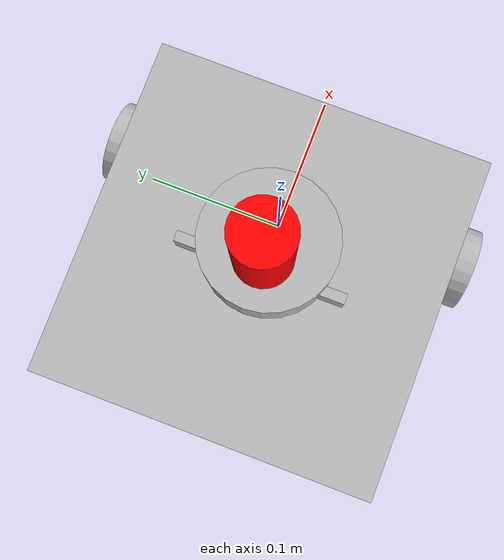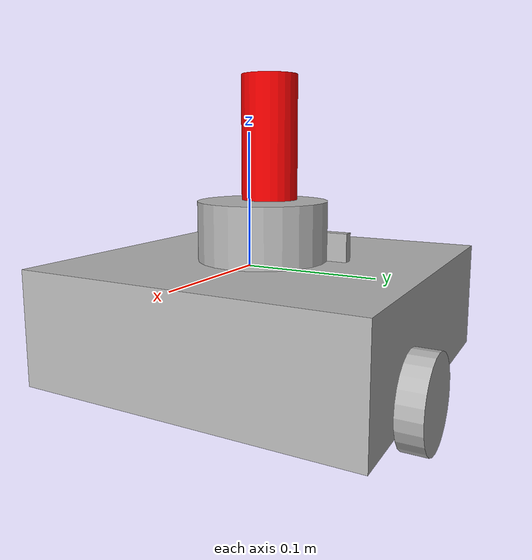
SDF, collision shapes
<?xml version='1.0'?>
<sdf version='1.6'>
  <model name='Untitled'>
    <link name='link_2'>
      <pose frame=''>-0.032357 -0.000429 0.090604 0 -0 0</pose>
      <inertial>
        <mass>0.00020921</mass>
        <inertia>
          <ixx>2.3e-07</ixx>
          <ixy>0</ixy>
          <ixz>0</ixz>
          <iyy>2.3e-07</iyy>
          <iyz>0</iyz>
          <izz>5e-08</izz>
        </inertia>
        <pose frame=''>0 0 0 0 -0 0</pose>
      </inertial>
      <gravity>1</gravity>
      <self_collide>0</self_collide>
      <kinematic>0</kinematic>
      <visual name='visual'>
        <pose frame=''>0 0 0 0 -0 0</pose>
        <geometry>
          <cylinder>
            <radius>0.0220156</radius>
            <length>0.107673</length>
          </cylinder>
        </geometry>
        <material>
          <lighting>1</lighting>
          <script>
            <uri>file://media/materials/scripts/gazebo.material</uri>
            <name>Gazebo/Grey</name>
          </script>
          <shader type='pixel'>
            <normal_map>__default__</normal_map>
          </shader>
          <ambient>1 0 0 1</ambient>
          <diffuse>1 0 0 1</diffuse>
          <specular>1 0 0 1</specular>
          <emissive>1 0 0 1</emissive>
        </material>
        <transparency>0</transparency>
        <cast_shadows>1</cast_shadows>
      </visual>
      <collision name='collision'>
        <laser_retro>0</laser_retro>
        <max_contacts>10</max_contacts>
        <pose frame=''>0 0 0 0 -0 0</pose>
        <geometry>
          <cylinder>
            <radius>0.022016</radius>
            <length>0.107673</length>
          </cylinder>
        </geometry>
        <surface>
          <friction>
            <ode>
              <mu>1</mu>
              <mu2>1</mu2>
              <fdir1>0 0 0</fdir1>
              <slip1>0</slip1>
              <slip2>0</slip2>
            </ode>
            <torsional>
              <coefficient>1</coefficient>
              <patch_radius>0</patch_radius>
              <surface_radius>0</surface_radius>
              <use_patch_radius>1</use_patch_radius>
              <ode>
                <slip>0</slip>
              </ode>
            </torsional>
          </friction>
          <bounce>
            <restitution_coefficient>0</restitution_coefficient>
            <threshold>1e+06</threshold>
          </bounce>
          <contact>
            <collide_without_contact>0</collide_without_contact>
            <collide_without_contact_bitmask>1</collide_without_contact_bitmask>
            <collide_bitmask>1</collide_bitmask>
            <ode>
              <soft_cfm>0</soft_cfm>
              <soft_erp>0.2</soft_erp>
              <kp>1e+13</kp>
              <kd>1</kd>
              <max_vel>0.01</max_vel>
              <min_depth>0</min_depth>
            </ode>
            <bullet>
              <split_impulse>1</split_impulse>
              <split_impulse_penetration_threshold>-0.01</split_impulse_penetration_threshold>
              <soft_cfm>0</soft_cfm>
              <soft_erp>0.2</soft_erp>
              <kp>1e+13</kp>
              <kd>1</kd>
            </bullet>
          </contact>
        </surface>
      </collision>
    </link>
    <model name='turtlebot3_waffle'>
      <link name='base'>
        <inertial>
          <pose frame=''>-0.064 0 0.048 0 -0 0</pose>
          <inertia>
            <ixx>0.001</ixx>
            <ixy>0</ixy>
            <ixz>0</ixz>
            <iyy>0.001</iyy>
            <iyz>0</iyz>
            <izz>0.001</izz>
          </inertia>
          <mass>1</mass>
        </inertial>
        <collision name='base_collision'>
          <pose frame=''>-0.064 0 0.048 0 -0 0</pose>
          <geometry>
            <box>
              <size>0.265 0.265 0.089</size>
            </box>
          </geometry>
        </collision>
        <visual name='base_visual'>
          <pose frame=''>-0.064 0 0 0 -0 0</pose>
          <geometry>
            <mesh>
              <uri>model://turtlebot3_waffle/meshes/waffle_base.dae</uri>
              <scale>0.001 0.001 0.001</scale>
            </mesh>
          </geometry>
        </visual>
        <collision name='right_caster_collision'>
          <pose frame=''>-0.177 -0.064 -0.004 0 -0 0</pose>
          <geometry>
            <sphere>
              <radius>0.005</radius>
            </sphere>
          </geometry>
          <surface>
            <friction>
              <ode>
                <mu>100000</mu>
                <mu2>100000</mu2>
                <fdir1>0 0 0</fdir1>
                <slip1>0</slip1>
                <slip2>0</slip2>
              </ode>
            </friction>
          </surface>
        </collision>
        <collision name='left_caster_collision'>
          <pose frame=''>-0.177 0.064 -0.004 0 -0 0</pose>
          <geometry>
            <sphere>
              <radius>0.005</radius>
            </sphere>
          </geometry>
          <surface>
            <friction>
              <ode>
                <mu>100000</mu>
                <mu2>100000</mu2>
                <fdir1>0 0 0</fdir1>
                <slip1>0</slip1>
                <slip2>0</slip2>
              </ode>
            </friction>
          </surface>
        </collision>
      </link>
      <link name='lidar'>
        <inertial>
          <pose frame=''>-0.052 0 0.111 0 -0 0</pose>
          <inertia>
            <ixx>0.001</ixx>
            <ixy>0</ixy>
            <ixz>0</ixz>
            <iyy>0.001</iyy>
            <iyz>0</iyz>
            <izz>0.001</izz>
          </inertia>
          <mass>0.125</mass>
        </inertial>
        <collision name='lidar_sensor_collision'>
          <pose frame=''>-0.052 0 0.111 0 -0 0</pose>
          <geometry>
            <cylinder>
              <radius>0.0508</radius>
              <length>0.055</length>
            </cylinder>
          </geometry>
        </collision>
        <visual name='lidar_sensor_visual'>
          <pose frame=''>-0.064 0 0.121 0 -0 0</pose>
          <geometry>
            <mesh>
              <uri>model://turtlebot3_waffle/meshes/lds.dae</uri>
              <scale>0.001 0.001 0.001</scale>
            </mesh>
          </geometry>
        </visual>
        <sensor name='hls_lfcd_lds' type='ray'>
          <always_on>1</always_on>
          <visualize>0</visualize>
          <pose frame=''>-0.064 0 0.121 0 -0 0</pose>
          <update_rate>1800</update_rate>
          <ray>
            <scan>
              <horizontal>
                <samples>360</samples>
                <resolution>1</resolution>
                <min_angle>0</min_angle>
                <max_angle>6.28</max_angle>
              </horizontal>
            </scan>
            <range>
              <min>0.12</min>
              <max>3.5</max>
              <resolution>0.015</resolution>
            </range>
            <noise>
              <type>gaussian</type>
              <mean>0</mean>
              <stddev>0.01</stddev>
            </noise>
          </ray>
        </sensor>
      </link>
      <link name='image'>
        <inertial>
          <pose frame=''>-0.069 0 0.104 0 -0 0</pose>
          <inertia>
            <ixx>0.001</ixx>
            <ixy>0</ixy>
            <ixz>0</ixz>
            <iyy>0.001</iyy>
            <iyz>0</iyz>
            <izz>0.001</izz>
          </inertia>
          <mass>0.035</mass>
        </inertial>
        <collision name='image_collision'>
          <pose frame=''>-0.069 0 0.104 0 -0 0</pose>
          <geometry>
            <box>
              <size>0.008 0.13 0.022</size>
            </box>
          </geometry>
        </collision>
        <sensor name='intel_realsense_r200' type='camera'>
          <always_on>1</always_on>
          <visualize>0</visualize>
          <update_rate>30</update_rate>
          <pose frame=''>0.064 -0.047 0.107 0 -0 0</pose>
          <camera name='__default__'>
            <horizontal_fov>1.02974</horizontal_fov>
            <image>
              <width>1920</width>
              <height>1080</height>
              <format>R8G8B8</format>
            </image>
            <clip>
              <near>0.02</near>
              <far>300</far>
            </clip>
          </camera>
        </sensor>
      </link>
      <link name='left_wheel'>
        <inertial>
          <pose frame=''>0 0.144 0.023 -1.57 0 0</pose>
          <inertia>
            <ixx>0.001</ixx>
            <ixy>0</ixy>
            <ixz>0</ixz>
            <iyy>0.001</iyy>
            <iyz>0</iyz>
            <izz>0.001</izz>
          </inertia>
          <mass>0.1</mass>
        </inertial>
        <collision name='left_wheel_collision'>
          <pose frame=''>0 0.144 0.023 -1.57 0 0</pose>
          <geometry>
            <cylinder>
              <radius>0.033</radius>
              <length>0.018</length>
            </cylinder>
          </geometry>
          <surface>
            <friction>
              <ode>
                <mu>100000</mu>
                <mu2>100000</mu2>
                <fdir1>0 0 0</fdir1>
                <slip1>0</slip1>
                <slip2>0</slip2>
              </ode>
            </friction>
          </surface>
        </collision>
        <visual name='left_wheel_visual'>
          <pose frame=''>0 0.144 0.023 0 -0 0</pose>
          <geometry>
            <mesh>
              <uri>model://turtlebot3_waffle/meshes/left_tire.dae</uri>
              <scale>0.001 0.001 0.001</scale>
            </mesh>
          </geometry>
        </visual>
      </link>
      <link name='right_wheel'>
        <inertial>
          <pose frame=''>0 -0.144 0.023 -1.57 0 0</pose>
          <inertia>
            <ixx>0.001</ixx>
            <ixy>0</ixy>
            <ixz>0</ixz>
            <iyy>0.001</iyy>
            <iyz>0</iyz>
            <izz>0.001</izz>
          </inertia>
          <mass>0.1</mass>
        </inertial>
        <collision name='right_wheel_collision'>
          <pose frame=''>0 -0.144 0.023 -1.57 0 0</pose>
          <geometry>
            <cylinder>
              <radius>0.033</radius>
              <length>0.018</length>
            </cylinder>
          </geometry>
          <surface>
            <friction>
              <ode>
                <mu>100000</mu>
                <mu2>100000</mu2>
                <fdir1>0 0 0</fdir1>
                <slip1>0</slip1>
                <slip2>0</slip2>
              </ode>
            </friction>
          </surface>
        </collision>
        <visual name='right_wheel_visual'>
          <pose frame=''>0 -0.144 0.023 0 -0 0</pose>
          <geometry>
            <mesh>
              <uri>model://turtlebot3_waffle/meshes/right_tire.dae</uri>
              <scale>0.001 0.001 0.001</scale>
            </mesh>
          </geometry>
        </visual>
      </link>
      <joint name='left_wheel_joint' type='revolute'>
        <parent>base</parent>
        <child>left_wheel</child>
        <pose frame=''>0 0.144 0.023 -1.57 0 0</pose>
        <axis>
          <xyz>0 1 0</xyz>
          <use_parent_model_frame>0</use_parent_model_frame>
          <limit>
            <lower>-1e+16</lower>
            <upper>1e+16</upper>
          </limit>
        </axis>
      </joint>
      <joint name='right_wheel_joint' type='revolute'>
        <parent>base</parent>
        <child>right_wheel</child>
        <pose frame=''>0 -0.144 0.023 -1.57 0 0</pose>
        <axis>
          <xyz>0 1 0</xyz>
          <use_parent_model_frame>0</use_parent_model_frame>
          <limit>
            <lower>-1e+16</lower>
            <upper>1e+16</upper>
          </limit>
        </axis>
      </joint>
      <joint name='lidar_joint' type='fixed'>
        <parent>base</parent>
        <child>lidar</child>
        <pose frame=''>-0.064 0 0.121 0 -0 0</pose>
        <axis>
          <xyz>0 0 1</xyz>
          <use_parent_model_frame>1</use_parent_model_frame>
          <limit>
            <lower>-1e+16</lower>
            <upper>1e+16</upper>
          </limit>
        </axis>
      </joint>
      <joint name='image_joint' type='fixed'>
        <parent>base</parent>
        <child>image</child>
        <pose frame=''>0.064 -0.065 0.094 0 -0 0</pose>
        <axis>
          <xyz>0 0 1</xyz>
          <use_parent_model_frame>1</use_parent_model_frame>
          <limit>
            <lower>-1e+16</lower>
            <upper>1e+16</upper>
          </limit>
        </axis>
      </joint>
      <pose frame=''>0.032379 0.000427 -0.090604 0 -0 0</pose>
    </model>
    <static>0</static>
    <allow_auto_disable>1</allow_auto_disable>
  </model>
</sdf>
